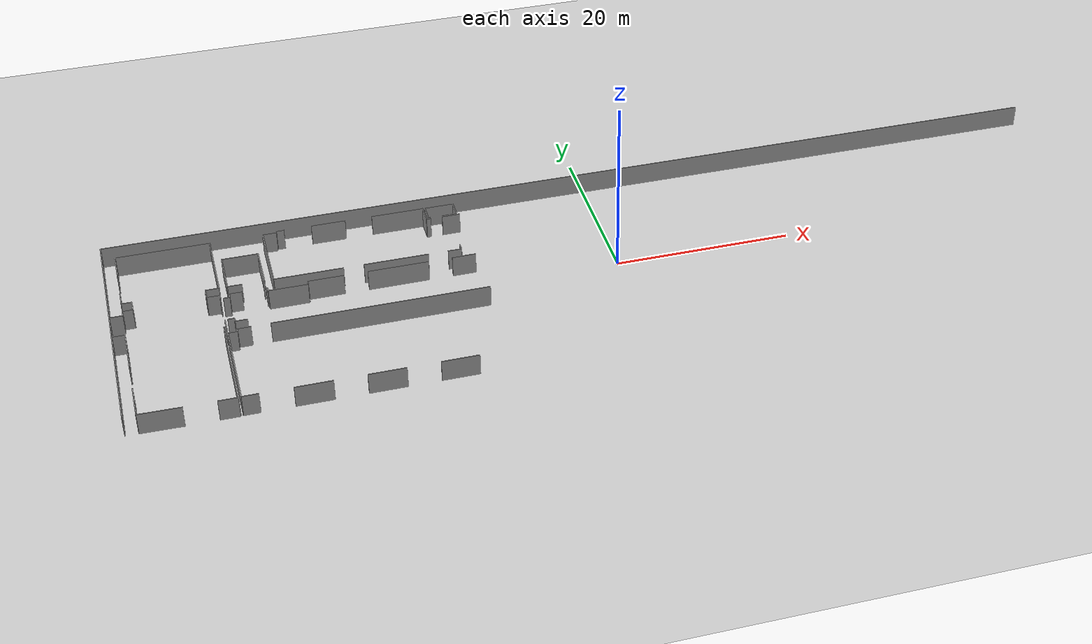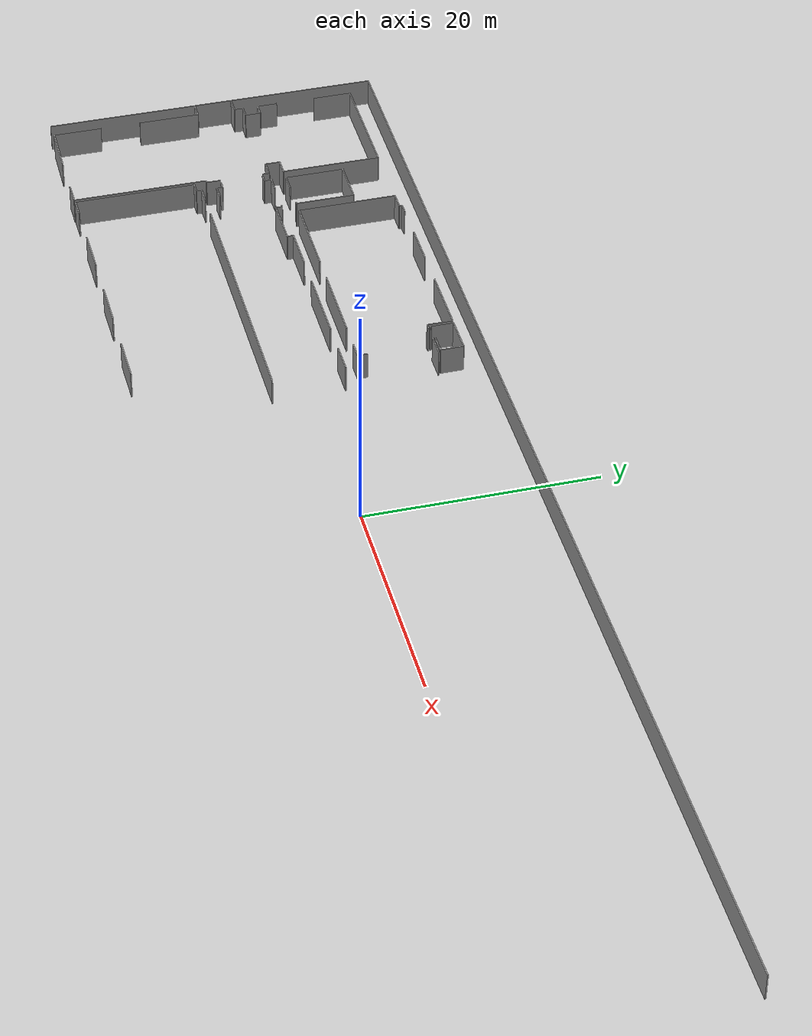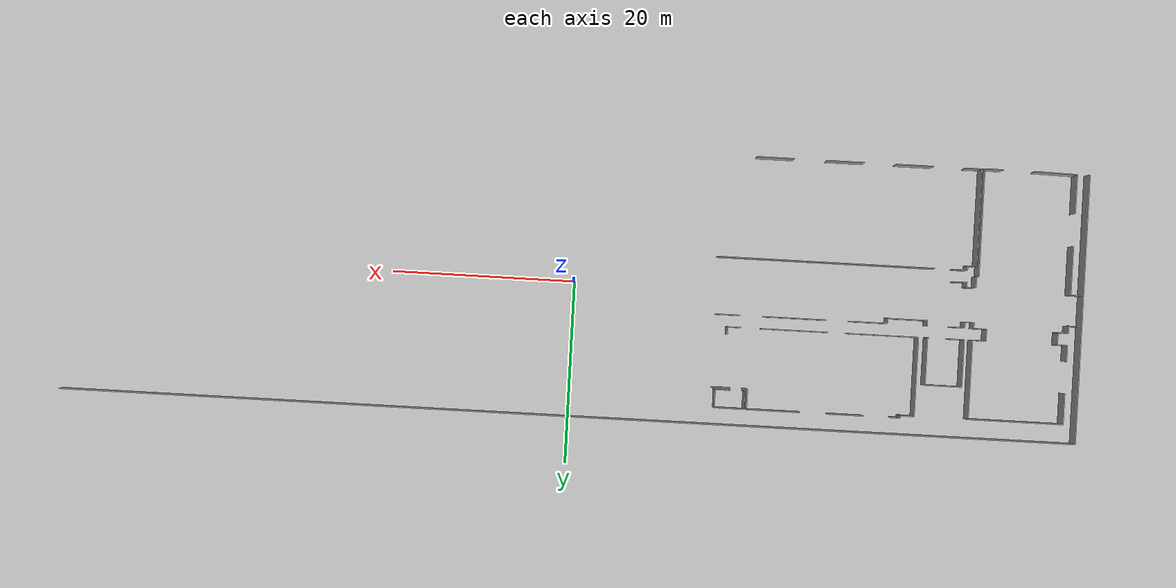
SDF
<sdf version="1.6">
 <world name="default">
  <model name="ground_plane">
   <static>1</static>
   <link name="link">
    <collision name="collision">
     <geometry><plane><normal>0 0 1</normal><size>100 100</size></plane></geometry>
     <surface><friction><ode><mu>100</mu><mu2>50</mu2></ode></friction></surface>
    </collision>
    <visual name="visual">
     <cast_shadows>0</cast_shadows>
     <geometry><plane><normal>0 0 1</normal><size>100 100</size></plane></geometry>
     <material>
      <script><uri>file://media/materials/scripts/gazebo.material</uri><name>Gazebo/Grey</name></script>
     </material>
    </visual>
   </link>
  </model>
  <model name="50056456">
   <static>1</static>
   <link name="Wall_0">
    <collision name="Wall_0_Collision">
     <geometry><box><size>2.08262390621 0.1 2.5</size></box></geometry>
     <pose>1.04131195311 0 1.25 0 0 0</pose>
    </collision>
    <visual name="Wall_0_Visual">
     <pose>1.04131195311 0 1.25 0 0 0</pose>
     <geometry><box><size>2.08262390621 0.1 2.5</size></box></geometry>
     <material>
      <script><uri>file://media/materials/scripts/gazebo.material</uri><name>Gazebo/Grey</name></script>
      <ambient>1 1 1 1</ambient>
     </material>
    </visual>
    <pose>11.503392544 -29.4986150288 0 0 0 3.14159265359</pose>
   </link>
   <link name="Wall_1">
    <collision name="Wall_1_Collision">
     <geometry><box><size>4.572843457 0.1 2.5</size></box></geometry>
     <pose>2.2864217285 0 1.25 0 0 0</pose>
    </collision>
    <visual name="Wall_1_Visual">
     <pose>2.2864217285 0 1.25 0 0 0</pose>
     <geometry><box><size>4.572843457 0.1 2.5</size></box></geometry>
     <material>
      <script><uri>file://media/materials/scripts/gazebo.material</uri><name>Gazebo/Grey</name></script>
      <ambient>1 1 1 1</ambient>
     </material>
    </visual>
    <pose>5.95317357458 -29.4986150288 0 0 0 3.12254874871</pose>
   </link>
   <link name="Wall_2">
    <collision name="Wall_2_Collision">
     <geometry><box><size>4.24775312783 0.1 2.5</size></box></geometry>
     <pose>2.12387656392 0 1.25 0 0 0</pose>
    </collision>
    <visual name="Wall_2_Visual">
     <pose>2.12387656392 0 1.25 0 0 0</pose>
     <geometry><box><size>4.24775312783 0.1 2.5</size></box></geometry>
     <material>
      <script><uri>file://media/materials/scripts/gazebo.material</uri><name>Gazebo/Grey</name></script>
      <ambient>1 1 1 1</ambient>
     </material>
    </visual>
    <pose>1.3811593098 -29.4115354968 0 0 0 1.57079632679</pose>
   </link>
   <link name="Wall_3">
    <collision name="Wall_3_Collision">
     <geometry><box><size>5.36301491703 0.1 2.5</size></box></geometry>
     <pose>2.68150745851 0 1.25 0 0 0</pose>
    </collision>
    <visual name="Wall_3_Visual">
     <pose>2.68150745851 0 1.25 0 0 0</pose>
     <geometry><box><size>5.36301491703 0.1 2.5</size></box></geometry>
     <material>
      <script><uri>file://media/materials/scripts/gazebo.material</uri><name>Gazebo/Grey</name></script>
      <ambient>1 1 1 1</ambient>
     </material>
    </visual>
    <pose>1.3811593098 -21.6009758329 0 0 0 1.57079632679</pose>
   </link>
   <link name="Wall_4">
    <collision name="Wall_4_Collision">
     <geometry><box><size>1.3811593098 0.1 2.5</size></box></geometry>
     <pose>0.690579654901 0 1.25 0 0 0</pose>
    </collision>
    <visual name="Wall_4_Visual">
     <pose>0.690579654901 0 1.25 0 0 0</pose>
     <geometry><box><size>1.3811593098 0.1 2.5</size></box></geometry>
     <material>
      <script><uri>file://media/materials/scripts/gazebo.material</uri><name>Gazebo/Grey</name></script>
      <ambient>1 1 1 1</ambient>
     </material>
    </visual>
    <pose>1.3811593098 -16.2379609159 0 0 0 3.14159265359</pose>
   </link>
   <link name="Wall_5">
    <collision name="Wall_5_Collision">
     <geometry><box><size>1.43469458633 0.1 2.5</size></box></geometry>
     <pose>0.717347293165 0 1.25 0 0 0</pose>
    </collision>
    <visual name="Wall_5_Visual">
     <pose>0.717347293165 0 1.25 0 0 0</pose>
     <geometry><box><size>1.43469458633 0.1 2.5</size></box></geometry>
     <material>
      <script><uri>file://media/materials/scripts/gazebo.material</uri><name>Gazebo/Grey</name></script>
      <ambient>1 1 1 1</ambient>
     </material>
    </visual>
    <pose>0.0 -12.8572759693 0 0 0 0.0</pose>
   </link>
   <link name="Wall_6">
    <collision name="Wall_6_Collision">
     <geometry><box><size>0.782699296079 0.1 2.5</size></box></geometry>
     <pose>0.391349648039 0 1.25 0 0 0</pose>
    </collision>
    <visual name="Wall_6_Visual">
     <pose>0.391349648039 0 1.25 0 0 0</pose>
     <geometry><box><size>0.782699296079 0.1 2.5</size></box></geometry>
     <material>
      <script><uri>file://media/materials/scripts/gazebo.material</uri><name>Gazebo/Grey</name></script>
      <ambient>1 1 1 1</ambient>
     </material>
    </visual>
    <pose>1.43469458633 -12.8572759693 0 0 0 1.57079632679</pose>
   </link>
   <link name="Wall_7">
    <collision name="Wall_7_Collision">
     <geometry><box><size>1.1062827713 0.1 2.5</size></box></geometry>
     <pose>0.553141385649 0 1.25 0 0 0</pose>
    </collision>
    <visual name="Wall_7_Visual">
     <pose>0.553141385649 0 1.25 0 0 0</pose>
     <geometry><box><size>1.1062827713 0.1 2.5</size></box></geometry>
     <material>
      <script><uri>file://media/materials/scripts/gazebo.material</uri><name>Gazebo/Grey</name></script>
      <ambient>1 1 1 1</ambient>
     </material>
    </visual>
    <pose>1.43469458633 -12.0745766732 0 0 0 0.0</pose>
   </link>
   <link name="Wall_8">
    <collision name="Wall_8_Collision">
     <geometry><box><size>1.34769976197 0.1 2.5</size></box></geometry>
     <pose>0.673849880986 0 1.25 0 0 0</pose>
    </collision>
    <visual name="Wall_8_Visual">
     <pose>0.673849880986 0 1.25 0 0 0</pose>
     <geometry><box><size>1.34769976197 0.1 2.5</size></box></geometry>
     <material>
      <script><uri>file://media/materials/scripts/gazebo.material</uri><name>Gazebo/Grey</name></script>
      <ambient>1 1 1 1</ambient>
     </material>
    </visual>
    <pose>2.54097735763 -12.0745766732 0 0 0 1.57079632679</pose>
   </link>
   <link name="Wall_9">
    <collision name="Wall_9_Collision">
     <geometry><box><size>1.09493193735 0.1 2.5</size></box></geometry>
     <pose>0.547465968675 0 1.25 0 0 0</pose>
    </collision>
    <visual name="Wall_9_Visual">
     <pose>0.547465968675 0 1.25 0 0 0</pose>
     <geometry><box><size>1.09493193735 0.1 2.5</size></box></geometry>
     <material>
      <script><uri>file://media/materials/scripts/gazebo.material</uri><name>Gazebo/Grey</name></script>
      <ambient>1 1 1 1</ambient>
     </material>
    </visual>
    <pose>2.54097735763 -10.7268769112 0 0 0 3.14159265359</pose>
   </link>
   <link name="Wall_10">
    <collision name="Wall_10_Collision">
     <geometry><box><size>1.77716788222 0.1 2.5</size></box></geometry>
     <pose>0.888583941111 0 1.25 0 0 0</pose>
    </collision>
    <visual name="Wall_10_Visual">
     <pose>0.888583941111 0 1.25 0 0 0</pose>
     <geometry><box><size>1.77716788222 0.1 2.5</size></box></geometry>
     <material>
      <script><uri>file://media/materials/scripts/gazebo.material</uri><name>Gazebo/Grey</name></script>
      <ambient>1 1 1 1</ambient>
     </material>
    </visual>
    <pose>1.44604542028 -10.7268769112 0 0 0 1.57079632679</pose>
   </link>
   <link name="Wall_11">
    <collision name="Wall_11_Collision">
     <geometry><box><size>3.38068494659 0.1 2.5</size></box></geometry>
     <pose>1.6903424733 0 1.25 0 0 0</pose>
    </collision>
    <visual name="Wall_11_Visual">
     <pose>1.6903424733 0 1.25 0 0 0</pose>
     <geometry><box><size>3.38068494659 0.1 2.5</size></box></geometry>
     <material>
      <script><uri>file://media/materials/scripts/gazebo.material</uri><name>Gazebo/Grey</name></script>
      <ambient>1 1 1 1</ambient>
     </material>
    </visual>
    <pose>1.44604542028 -5.4765232565 0 0 0 1.57079632679</pose>
   </link>
   <link name="Wall_12">
    <collision name="Wall_12_Collision">
     <geometry><box><size>10.3866907237 0.1 2.5</size></box></geometry>
     <pose>5.19334536183 0 1.25 0 0 0</pose>
    </collision>
    <visual name="Wall_12_Visual">
     <pose>5.19334536183 0 1.25 0 0 0</pose>
     <geometry><box><size>10.3866907237 0.1 2.5</size></box></geometry>
     <material>
      <script><uri>file://media/materials/scripts/gazebo.material</uri><name>Gazebo/Grey</name></script>
      <ambient>1 1 1 1</ambient>
     </material>
    </visual>
    <pose>1.44604542028 -2.09583830991 0 0 0 0.0</pose>
   </link>
   <link name="Wall_13">
    <collision name="Wall_13_Collision">
     <geometry><box><size>8.64967429883 0.1 2.5</size></box></geometry>
     <pose>4.32483714942 0 1.25 0 0 0</pose>
    </collision>
    <visual name="Wall_13_Visual">
     <pose>4.32483714942 0 1.25 0 0 0</pose>
     <geometry><box><size>8.64967429883 0.1 2.5</size></box></geometry>
     <material>
      <script><uri>file://media/materials/scripts/gazebo.material</uri><name>Gazebo/Grey</name></script>
      <ambient>1 1 1 1</ambient>
     </material>
    </visual>
    <pose>11.8327361439 -2.09583830991 0 0 0 -1.57079632679</pose>
   </link>
   <link name="Wall_14">
    <collision name="Wall_14_Collision">
     <geometry><box><size>1.48204619959 0.1 2.5</size></box></geometry>
     <pose>0.741023099794 0 1.25 0 0 0</pose>
    </collision>
    <visual name="Wall_14_Visual">
     <pose>0.741023099794 0 1.25 0 0 0</pose>
     <geometry><box><size>1.48204619959 0.1 2.5</size></box></geometry>
     <material>
      <script><uri>file://media/materials/scripts/gazebo.material</uri><name>Gazebo/Grey</name></script>
      <ambient>1 1 1 1</ambient>
     </material>
    </visual>
    <pose>11.8327361439 -10.7455126087 0 0 0 3.14159265359</pose>
   </link>
   <link name="Wall_15">
    <collision name="Wall_15_Collision">
     <geometry><box><size>1.28162774347 0.1 2.5</size></box></geometry>
     <pose>0.640813871736 0 1.25 0 0 0</pose>
    </collision>
    <visual name="Wall_15_Visual">
     <pose>0.640813871736 0 1.25 0 0 0</pose>
     <geometry><box><size>1.28162774347 0.1 2.5</size></box></geometry>
     <material>
      <script><uri>file://media/materials/scripts/gazebo.material</uri><name>Gazebo/Grey</name></script>
      <ambient>1 1 1 1</ambient>
     </material>
    </visual>
    <pose>10.3506899443 -10.7455126087 0 0 0 -1.57079632679</pose>
   </link>
   <link name="Wall_16">
    <collision name="Wall_16_Collision">
     <geometry><box><size>1.41428002677 0.1 2.5</size></box></geometry>
     <pose>0.707140013384 0 1.25 0 0 0</pose>
    </collision>
    <visual name="Wall_16_Visual">
     <pose>0.707140013384 0 1.25 0 0 0</pose>
     <geometry><box><size>1.41428002677 0.1 2.5</size></box></geometry>
     <material>
      <script><uri>file://media/materials/scripts/gazebo.material</uri><name>Gazebo/Grey</name></script>
      <ambient>1 1 1 1</ambient>
     </material>
    </visual>
    <pose>10.3506899443 -12.0271403522 0 0 0 0.0</pose>
   </link>
   <link name="Wall_17">
    <collision name="Wall_17_Collision">
     <geometry><box><size>0.611759125139 0.1 2.5</size></box></geometry>
     <pose>0.305879562569 0 1.25 0 0 0</pose>
    </collision>
    <visual name="Wall_17_Visual">
     <pose>0.305879562569 0 1.25 0 0 0</pose>
     <geometry><box><size>0.611759125139 0.1 2.5</size></box></geometry>
     <material>
      <script><uri>file://media/materials/scripts/gazebo.material</uri><name>Gazebo/Grey</name></script>
      <ambient>1 1 1 1</ambient>
     </material>
    </visual>
    <pose>11.7649699711 -12.0271403522 0 0 0 -1.57079632679</pose>
   </link>
   <link name="Wall_18">
    <collision name="Wall_18_Collision">
     <geometry><box><size>1.22978662126 0.1 2.5</size></box></geometry>
     <pose>0.614893310632 0 1.25 0 0 0</pose>
    </collision>
    <visual name="Wall_18_Visual">
     <pose>0.614893310632 0 1.25 0 0 0</pose>
     <geometry><box><size>1.22978662126 0.1 2.5</size></box></geometry>
     <material>
      <script><uri>file://media/materials/scripts/gazebo.material</uri><name>Gazebo/Grey</name></script>
      <ambient>1 1 1 1</ambient>
     </material>
    </visual>
    <pose>11.7649699711 -16.4629446096 0 0 0 -1.57079632679</pose>
   </link>
   <link name="Wall_19">
    <collision name="Wall_19_Collision">
     <geometry><box><size>0.253614901781 0.1 2.5</size></box></geometry>
     <pose>0.126807450891 0 1.25 0 0 0</pose>
    </collision>
    <visual name="Wall_19_Visual">
     <pose>0.126807450891 0 1.25 0 0 0</pose>
     <geometry><box><size>0.253614901781 0.1 2.5</size></box></geometry>
     <material>
      <script><uri>file://media/materials/scripts/gazebo.material</uri><name>Gazebo/Grey</name></script>
      <ambient>1 1 1 1</ambient>
     </material>
    </visual>
    <pose>11.7649699711 -17.6927312309 0 0 0 3.14159265359</pose>
   </link>
   <link name="Wall_20">
    <collision name="Wall_20_Collision">
     <geometry><box><size>11.8058864831 0.1 2.5</size></box></geometry>
     <pose>5.90294324157 0 1.25 0 0 0</pose>
    </collision>
    <visual name="Wall_20_Visual">
     <pose>5.90294324157 0 1.25 0 0 0</pose>
     <geometry><box><size>11.8058864831 0.1 2.5</size></box></geometry>
     <material>
      <script><uri>file://media/materials/scripts/gazebo.material</uri><name>Gazebo/Grey</name></script>
      <ambient>1 1 1 1</ambient>
     </material>
    </visual>
    <pose>11.5113550693 -17.6927312309 0 0 0 -1.57147078067</pose>
   </link>
   <link name="Wall_35">
    <collision name="Wall_35_Collision">
     <geometry><box><size>1.32584517124 0.1 2.5</size></box></geometry>
     <pose>0.662922585618 0 1.25 0 0 0</pose>
    </collision>
    <visual name="Wall_35_Visual">
     <pose>0.662922585618 0 1.25 0 0 0</pose>
     <geometry><box><size>1.32584517124 0.1 2.5</size></box></geometry>
     <material>
      <script><uri>file://media/materials/scripts/gazebo.material</uri><name>Gazebo/Grey</name></script>
      <ambient>1 1 1 1</ambient>
     </material>
    </visual>
    <pose>14.1073077347 -17.0020245144 0 0 0 3.14159265359</pose>
   </link>
   <link name="Wall_36">
    <collision name="Wall_36_Collision">
     <geometry><box><size>0.525865501089 0.1 2.5</size></box></geometry>
     <pose>0.262932750544 0 1.25 0 0 0</pose>
    </collision>
    <visual name="Wall_36_Visual">
     <pose>0.262932750544 0 1.25 0 0 0</pose>
     <geometry><box><size>0.525865501089 0.1 2.5</size></box></geometry>
     <material>
      <script><uri>file://media/materials/scripts/gazebo.material</uri><name>Gazebo/Grey</name></script>
      <ambient>1 1 1 1</ambient>
     </material>
    </visual>
    <pose>12.7814625634 -17.0020245144 0 0 0 1.57079632679</pose>
   </link>
   <link name="Wall_37">
    <collision name="Wall_37_Collision">
     <geometry><box><size>0.736618298561 0.1 2.5</size></box></geometry>
     <pose>0.36830914928 0 1.25 0 0 0</pose>
    </collision>
    <visual name="Wall_37_Visual">
     <pose>0.36830914928 0 1.25 0 0 0</pose>
     <geometry><box><size>0.736618298561 0.1 2.5</size></box></geometry>
     <material>
      <script><uri>file://media/materials/scripts/gazebo.material</uri><name>Gazebo/Grey</name></script>
      <ambient>1 1 1 1</ambient>
     </material>
    </visual>
    <pose>12.7814625634 -16.4761590133 0 0 0 3.14159265359</pose>
   </link>
   <link name="Wall_38">
    <collision name="Wall_38_Collision">
     <geometry><box><size>0.701379888694 0.1 2.5</size></box></geometry>
     <pose>0.350689944347 0 1.25 0 0 0</pose>
    </collision>
    <visual name="Wall_38_Visual">
     <pose>0.350689944347 0 1.25 0 0 0</pose>
     <geometry><box><size>0.701379888694 0.1 2.5</size></box></geometry>
     <material>
      <script><uri>file://media/materials/scripts/gazebo.material</uri><name>Gazebo/Grey</name></script>
      <ambient>1 1 1 1</ambient>
     </material>
    </visual>
    <pose>12.0448442649 -12.684641644 0 0 0 0.0</pose>
   </link>
   <link name="Wall_39">
    <collision name="Wall_39_Collision">
     <geometry><box><size>0.63496903933 0.1 2.5</size></box></geometry>
     <pose>0.317484519665 0 1.25 0 0 0</pose>
    </collision>
    <visual name="Wall_39_Visual">
     <pose>0.317484519665 0 1.25 0 0 0</pose>
     <geometry><box><size>0.63496903933 0.1 2.5</size></box></geometry>
     <material>
      <script><uri>file://media/materials/scripts/gazebo.material</uri><name>Gazebo/Grey</name></script>
      <ambient>1 1 1 1</ambient>
     </material>
    </visual>
    <pose>12.7462241536 -12.684641644 0 0 0 1.57079632679</pose>
   </link>
   <link name="Wall_40">
    <collision name="Wall_40_Collision">
     <geometry><box><size>1.38226051011 0.1 2.5</size></box></geometry>
     <pose>0.691130255055 0 1.25 0 0 0</pose>
    </collision>
    <visual name="Wall_40_Visual">
     <pose>0.691130255055 0 1.25 0 0 0</pose>
     <geometry><box><size>1.38226051011 0.1 2.5</size></box></geometry>
     <material>
      <script><uri>file://media/materials/scripts/gazebo.material</uri><name>Gazebo/Grey</name></script>
      <ambient>1 1 1 1</ambient>
     </material>
    </visual>
    <pose>12.7462241536 -12.0496726047 0 0 0 0.0</pose>
   </link>
   <link name="Wall_41">
    <collision name="Wall_41_Collision">
     <geometry><box><size>0.166535369707 0.1 2.5</size></box></geometry>
     <pose>0.0832676848534 0 1.25 0 0 0</pose>
    </collision>
    <visual name="Wall_41_Visual">
     <pose>0.0832676848534 0 1.25 0 0 0</pose>
     <geometry><box><size>0.166535369707 0.1 2.5</size></box></geometry>
     <material>
      <script><uri>file://media/materials/scripts/gazebo.material</uri><name>Gazebo/Grey</name></script>
      <ambient>1 1 1 1</ambient>
     </material>
    </visual>
    <pose>16.7173218809 -12.0496726047 0 0 0 0.0</pose>
   </link>
   <link name="Wall_42">
    <collision name="Wall_42_Collision">
     <geometry><box><size>0.564153388732 0.1 2.5</size></box></geometry>
     <pose>0.282076694366 0 1.25 0 0 0</pose>
    </collision>
    <visual name="Wall_42_Visual">
     <pose>0.282076694366 0 1.25 0 0 0</pose>
     <geometry><box><size>0.564153388732 0.1 2.5</size></box></geometry>
     <material>
      <script><uri>file://media/materials/scripts/gazebo.material</uri><name>Gazebo/Grey</name></script>
      <ambient>1 1 1 1</ambient>
     </material>
    </visual>
    <pose>16.8838572506 -12.0496726047 0 0 0 -1.57079632679</pose>
   </link>
   <link name="Wall_43">
    <collision name="Wall_43_Collision">
     <geometry><box><size>4.31704403954 0.1 2.5</size></box></geometry>
     <pose>2.15852201977 0 1.25 0 0 0</pose>
    </collision>
    <visual name="Wall_43_Visual">
     <pose>2.15852201977 0 1.25 0 0 0</pose>
     <geometry><box><size>4.31704403954 0.1 2.5</size></box></geometry>
     <material>
      <script><uri>file://media/materials/scripts/gazebo.material</uri><name>Gazebo/Grey</name></script>
      <ambient>1 1 1 1</ambient>
     </material>
    </visual>
    <pose>16.8838572506 -12.6138259934 0 0 0 0.0</pose>
   </link>
   <link name="Wall_44">
    <collision name="Wall_44_Collision">
     <geometry><box><size>0.5507695696 0.1 2.5</size></box></geometry>
     <pose>0.2753847848 0 1.25 0 0 0</pose>
    </collision>
    <visual name="Wall_44_Visual">
     <pose>0.2753847848 0 1.25 0 0 0</pose>
     <geometry><box><size>0.5507695696 0.1 2.5</size></box></geometry>
     <material>
      <script><uri>file://media/materials/scripts/gazebo.material</uri><name>Gazebo/Grey</name></script>
      <ambient>1 1 1 1</ambient>
     </material>
    </visual>
    <pose>21.2009012901 -12.6138259934 0 0 0 1.57079632679</pose>
   </link>
   <link name="Wall_45">
    <collision name="Wall_45_Collision">
     <geometry><box><size>3.99684887296 0.1 2.5</size></box></geometry>
     <pose>1.99842443648 0 1.25 0 0 0</pose>
    </collision>
    <visual name="Wall_45_Visual">
     <pose>1.99842443648 0 1.25 0 0 0</pose>
     <geometry><box><size>3.99684887296 0.1 2.5</size></box></geometry>
     <material>
      <script><uri>file://media/materials/scripts/gazebo.material</uri><name>Gazebo/Grey</name></script>
      <ambient>1 1 1 1</ambient>
     </material>
    </visual>
    <pose>21.2009012901 -12.0630564238 0 0 0 0.0</pose>
   </link>
   <link name="Wall_46">
    <collision name="Wall_46_Collision">
     <geometry><box><size>6.78051383701 0.1 2.5</size></box></geometry>
     <pose>3.3902569185 0 1.25 0 0 0</pose>
    </collision>
    <visual name="Wall_46_Visual">
     <pose>3.3902569185 0 1.25 0 0 0</pose>
     <geometry><box><size>6.78051383701 0.1 2.5</size></box></geometry>
     <material>
      <script><uri>file://media/materials/scripts/gazebo.material</uri><name>Gazebo/Grey</name></script>
      <ambient>1 1 1 1</ambient>
     </material>
    </visual>
    <pose>27.8443580426 -12.0630564238 0 0 0 0.0</pose>
   </link>
   <link name="Wall_47">
    <collision name="Wall_47_Collision">
     <geometry><box><size>2.63457938384 0.1 2.5</size></box></geometry>
     <pose>1.31728969192 0 1.25 0 0 0</pose>
    </collision>
    <visual name="Wall_47_Visual">
     <pose>1.31728969192 0 1.25 0 0 0</pose>
     <geometry><box><size>2.63457938384 0.1 2.5</size></box></geometry>
     <material>
      <script><uri>file://media/materials/scripts/gazebo.material</uri><name>Gazebo/Grey</name></script>
      <ambient>1 1 1 1</ambient>
     </material>
    </visual>
    <pose>37.2692773585 -12.0630564238 0 0 0 0.0</pose>
   </link>
   <link name="Wall_77">
    <collision name="Wall_77_Collision">
     <geometry><box><size>0.161114075881 0.1 2.5</size></box></geometry>
     <pose>0.0805570379406 0 1.25 0 0 0</pose>
    </collision>
    <visual name="Wall_77_Visual">
     <pose>0.0805570379406 0 1.25 0 0 0</pose>
     <geometry><box><size>0.161114075881 0.1 2.5</size></box></geometry>
     <material>
      <script><uri>file://media/materials/scripts/gazebo.material</uri><name>Gazebo/Grey</name></script>
      <ambient>1 1 1 1</ambient>
     </material>
    </visual>
    <pose>16.7398541333 -10.7300958044 0 0 0 3.14159265359</pose>
   </link>
   <link name="Wall_78">
    <collision name="Wall_78_Collision">
     <geometry><box><size>1.57895182672 0.1 2.5</size></box></geometry>
     <pose>0.789475913361 0 1.25 0 0 0</pose>
    </collision>
    <visual name="Wall_78_Visual">
     <pose>0.789475913361 0 1.25 0 0 0</pose>
     <geometry><box><size>1.57895182672 0.1 2.5</size></box></geometry>
     <material>
      <script><uri>file://media/materials/scripts/gazebo.material</uri><name>Gazebo/Grey</name></script>
      <ambient>1 1 1 1</ambient>
     </material>
    </visual>
    <pose>14.3124698229 -10.7300958044 0 0 0 3.14159265359</pose>
   </link>
   <link name="Wall_79">
    <collision name="Wall_79_Collision">
     <geometry><box><size>5.15683633622 0.1 2.5</size></box></geometry>
     <pose>2.57841816811 0 1.25 0 0 0</pose>
    </collision>
    <visual name="Wall_79_Visual">
     <pose>2.57841816811 0 1.25 0 0 0</pose>
     <geometry><box><size>5.15683633622 0.1 2.5</size></box></geometry>
     <material>
      <script><uri>file://media/materials/scripts/gazebo.material</uri><name>Gazebo/Grey</name></script>
      <ambient>1 1 1 1</ambient>
     </material>
    </visual>
    <pose>12.7335179962 -10.7300958044 0 0 0 1.57079632679</pose>
   </link>
   <link name="Wall_80">
    <collision name="Wall_80_Collision">
     <geometry><box><size>4.0102326921 0.1 2.5</size></box></geometry>
     <pose>2.00511634605 0 1.25 0 0 0</pose>
    </collision>
    <visual name="Wall_80_Visual">
     <pose>2.00511634605 0 1.25 0 0 0</pose>
     <geometry><box><size>4.0102326921 0.1 2.5</size></box></geometry>
     <material>
      <script><uri>file://media/materials/scripts/gazebo.material</uri><name>Gazebo/Grey</name></script>
      <ambient>1 1 1 1</ambient>
     </material>
    </visual>
    <pose>12.7335179962 -5.5732594682 0 0 0 0.0</pose>
   </link>
   <link name="Wall_81">
    <collision name="Wall_81_Collision">
     <geometry><box><size>5.15683780836 0.1 2.5</size></box></geometry>
     <pose>2.57841890418 0 1.25 0 0 0</pose>
    </collision>
    <visual name="Wall_81_Visual">
     <pose>2.57841890418 0 1.25 0 0 0</pose>
     <geometry><box><size>5.15683780836 0.1 2.5</size></box></geometry>
     <material>
      <script><uri>file://media/materials/scripts/gazebo.material</uri><name>Gazebo/Grey</name></script>
      <ambient>1 1 1 1</ambient>
     </material>
    </visual>
    <pose>16.7437506883 -5.5732594682 0 0 0 -1.57155193623</pose>
   </link>
   <link name="Wall_83">
    <collision name="Wall_83_Collision">
     <geometry><box><size>4.08646963652 0.1 2.5</size></box></geometry>
     <pose>2.04323481826 0 1.25 0 0 0</pose>
    </collision>
    <visual name="Wall_83_Visual">
     <pose>2.04323481826 0 1.25 0 0 0</pose>
     <geometry><box><size>4.08646963652 0.1 2.5</size></box></geometry>
     <material>
      <script><uri>file://media/materials/scripts/gazebo.material</uri><name>Gazebo/Grey</name></script>
      <ambient>1 1 1 1</ambient>
     </material>
    </visual>
    <pose>36.355450518 -29.4547364319 0 0 0 3.14159265359</pose>
   </link>
   <link name="Wall_84">
    <collision name="Wall_84_Collision">
     <geometry><box><size>4.08646963652 0.1 2.5</size></box></geometry>
     <pose>2.04323481826 0 1.25 0 0 0</pose>
    </collision>
    <visual name="Wall_84_Visual">
     <pose>2.04323481826 0 1.25 0 0 0</pose>
     <geometry><box><size>4.08646963652 0.1 2.5</size></box></geometry>
     <material>
      <script><uri>file://media/materials/scripts/gazebo.material</uri><name>Gazebo/Grey</name></script>
      <ambient>1 1 1 1</ambient>
     </material>
    </visual>
    <pose>28.7205746571 -29.4547364319 0 0 0 3.14159265359</pose>
   </link>
   <link name="Wall_85">
    <collision name="Wall_85_Collision">
     <geometry><box><size>4.06088790628 0.1 2.5</size></box></geometry>
     <pose>2.03044395314 0 1.25 0 0 0</pose>
    </collision>
    <visual name="Wall_85_Visual">
     <pose>2.03044395314 0 1.25 0 0 0</pose>
     <geometry><box><size>4.06088790628 0.1 2.5</size></box></geometry>
     <material>
      <script><uri>file://media/materials/scripts/gazebo.material</uri><name>Gazebo/Grey</name></script>
      <ambient>1 1 1 1</ambient>
     </material>
    </visual>
    <pose>21.1497378296 -29.4547364319 0 0 0 3.14159265359</pose>
   </link>
   <link name="Wall_86">
    <collision name="Wall_86_Collision">
     <geometry><box><size>1.78055619086 0.1 2.5</size></box></geometry>
     <pose>0.890278095432 0 1.25 0 0 0</pose>
    </collision>
    <visual name="Wall_86_Visual">
     <pose>0.890278095432 0 1.25 0 0 0</pose>
     <geometry><box><size>1.78055619086 0.1 2.5</size></box></geometry>
     <material>
      <script><uri>file://media/materials/scripts/gazebo.material</uri><name>Gazebo/Grey</name></script>
      <ambient>1 1 1 1</ambient>
     </material>
    </visual>
    <pose>13.5660254293 -29.4547364319 0 0 0 3.14159265359</pose>
   </link>
   <link name="Wall_87">
    <collision name="Wall_87_Collision">
     <geometry><box><size>10.6333595927 0.1 2.5</size></box></geometry>
     <pose>5.31667979636 0 1.25 0 0 0</pose>
    </collision>
    <visual name="Wall_87_Visual">
     <pose>5.31667979636 0 1.25 0 0 0</pose>
     <geometry><box><size>10.6333595927 0.1 2.5</size></box></geometry>
     <material>
      <script><uri>file://media/materials/scripts/gazebo.material</uri><name>Gazebo/Grey</name></script>
      <ambient>1 1 1 1</ambient>
     </material>
    </visual>
    <pose>11.7854692384 -29.4547364319 0 0 0 1.57079632679</pose>
   </link>
   <link name="Wall_88">
    <collision name="Wall_88_Collision">
     <geometry><box><size>1.00615825096 0.1 2.5</size></box></geometry>
     <pose>0.503079125478 0 1.25 0 0 0</pose>
    </collision>
    <visual name="Wall_88_Visual">
     <pose>0.503079125478 0 1.25 0 0 0</pose>
     <geometry><box><size>1.00615825096 0.1 2.5</size></box></geometry>
     <material>
      <script><uri>file://media/materials/scripts/gazebo.material</uri><name>Gazebo/Grey</name></script>
      <ambient>1 1 1 1</ambient>
     </material>
    </visual>
    <pose>11.7854692384 -18.8213768392 0 0 0 0.0</pose>
   </link>
   <link name="Wall_89">
    <collision name="Wall_89_Collision">
     <geometry><box><size>0.471652562832 0.1 2.5</size></box></geometry>
     <pose>0.235826281416 0 1.25 0 0 0</pose>
    </collision>
    <visual name="Wall_89_Visual">
     <pose>0.235826281416 0 1.25 0 0 0</pose>
     <geometry><box><size>0.471652562832 0.1 2.5</size></box></geometry>
     <material>
      <script><uri>file://media/materials/scripts/gazebo.material</uri><name>Gazebo/Grey</name></script>
      <ambient>1 1 1 1</ambient>
     </material>
    </visual>
    <pose>12.7916274893 -18.8213768392 0 0 0 1.57079632679</pose>
   </link>
   <link name="Wall_90">
    <collision name="Wall_90_Collision">
     <geometry><box><size>1.46561290268 0.1 2.5</size></box></geometry>
     <pose>0.73280645134 0 1.25 0 0 0</pose>
    </collision>
    <visual name="Wall_90_Visual">
     <pose>0.73280645134 0 1.25 0 0 0</pose>
     <geometry><box><size>1.46561290268 0.1 2.5</size></box></geometry>
     <material>
      <script><uri>file://media/materials/scripts/gazebo.material</uri><name>Gazebo/Grey</name></script>
      <ambient>1 1 1 1</ambient>
     </material>
    </visual>
    <pose>12.7916274893 -18.3497242764 0 0 0 0.0</pose>
   </link>
   <link name="Wall_91">
    <collision name="Wall_91_Collision">
     <geometry><box><size>23.7711875175 0.1 2.5</size></box></geometry>
     <pose>11.8855937587 0 1.25 0 0 0</pose>
    </collision>
    <visual name="Wall_91_Visual">
     <pose>11.8855937587 0 1.25 0 0 0</pose>
     <geometry><box><size>23.7711875175 0.1 2.5</size></box></geometry>
     <material>
      <script><uri>file://media/materials/scripts/gazebo.material</uri><name>Gazebo/Grey</name></script>
      <ambient>1 1 1 1</ambient>
     </material>
    </visual>
    <pose>16.3376618976 -18.3497242764 0 0 0 0.0</pose>
   </link>
   <link name="Wall_105">
    <collision name="Wall_105_Collision">
     <geometry><box><size>0.859105655934 0.1 2.5</size></box></geometry>
     <pose>0.429552827967 0 1.25 0 0 0</pose>
    </collision>
    <visual name="Wall_105_Visual">
     <pose>0.429552827967 0 1.25 0 0 0</pose>
     <geometry><box><size>0.859105655934 0.1 2.5</size></box></geometry>
     <material>
      <script><uri>file://media/materials/scripts/gazebo.material</uri><name>Gazebo/Grey</name></script>
      <ambient>1 1 1 1</ambient>
     </material>
    </visual>
    <pose>38.6079981025 -9.86777125528 0 0 0 -1.57079632679</pose>
   </link>
   <link name="Wall_106">
    <collision name="Wall_106_Collision">
     <geometry><box><size>1.50762792983 0.1 2.5</size></box></geometry>
     <pose>0.753813964914 0 1.25 0 0 0</pose>
    </collision>
    <visual name="Wall_106_Visual">
     <pose>0.753813964914 0 1.25 0 0 0</pose>
     <geometry><box><size>1.50762792983 0.1 2.5</size></box></geometry>
     <material>
      <script><uri>file://media/materials/scripts/gazebo.material</uri><name>Gazebo/Grey</name></script>
      <ambient>1 1 1 1</ambient>
     </material>
    </visual>
    <pose>38.6079981025 -10.7268769112 0 0 0 3.14159265359</pose>
   </link>
   <link name="Wall_107">
    <collision name="Wall_107_Collision">
     <geometry><box><size>7.21845272886 0.1 2.5</size></box></geometry>
     <pose>3.60922636443 0 1.25 0 0 0</pose>
    </collision>
    <visual name="Wall_107_Visual">
     <pose>3.60922636443 0 1.25 0 0 0</pose>
     <geometry><box><size>7.21845272886 0.1 2.5</size></box></geometry>
     <material>
      <script><uri>file://media/materials/scripts/gazebo.material</uri><name>Gazebo/Grey</name></script>
      <ambient>1 1 1 1</ambient>
     </material>
    </visual>
    <pose>34.8766232116 -10.7268769112 0 0 0 3.14159265359</pose>
   </link>
   <link name="Wall_108">
    <collision name="Wall_108_Collision">
     <geometry><box><size>7.67045310157 0.1 2.5</size></box></geometry>
     <pose>3.83522655079 0 1.25 0 0 0</pose>
    </collision>
    <visual name="Wall_108_Visual">
     <pose>3.83522655079 0 1.25 0 0 0</pose>
     <geometry><box><size>7.67045310157 0.1 2.5</size></box></geometry>
     <material>
      <script><uri>file://media/materials/scripts/gazebo.material</uri><name>Gazebo/Grey</name></script>
      <ambient>1 1 1 1</ambient>
     </material>
    </visual>
    <pose>25.4118912692 -10.7268769112 0 0 0 3.14159265359</pose>
   </link>
   <link name="Wall_109">
    <collision name="Wall_109_Collision">
     <geometry><box><size>8.64188118896 0.1 2.5</size></box></geometry>
     <pose>4.32094059448 0 1.25 0 0 0</pose>
    </collision>
    <visual name="Wall_109_Visual">
     <pose>4.32094059448 0 1.25 0 0 0</pose>
     <geometry><box><size>8.64188118896 0.1 2.5</size></box></geometry>
     <material>
      <script><uri>file://media/materials/scripts/gazebo.material</uri><name>Gazebo/Grey</name></script>
      <ambient>1 1 1 1</ambient>
     </material>
    </visual>
    <pose>17.7414381676 -10.7268769112 0 0 0 1.57079632679</pose>
   </link>
   <link name="Wall_110">
    <collision name="Wall_110_Collision">
     <geometry><box><size>1.51914817921 0.1 2.5</size></box></geometry>
     <pose>0.759574089604 0 1.25 0 0 0</pose>
    </collision>
    <visual name="Wall_110_Visual">
     <pose>0.759574089604 0 1.25 0 0 0</pose>
     <geometry><box><size>1.51914817921 0.1 2.5</size></box></geometry>
     <material>
      <script><uri>file://media/materials/scripts/gazebo.material</uri><name>Gazebo/Grey</name></script>
      <ambient>1 1 1 1</ambient>
     </material>
    </visual>
    <pose>17.7414381676 -2.08499572226 0 0 0 0.0</pose>
   </link>
   <link name="Wall_111">
    <collision name="Wall_111_Collision">
     <geometry><box><size>0.244297053019 0.1 2.5</size></box></geometry>
     <pose>0.122148526509 0 1.25 0 0 0</pose>
    </collision>
    <visual name="Wall_111_Visual">
     <pose>0.122148526509 0 1.25 0 0 0</pose>
     <geometry><box><size>0.244297053019 0.1 2.5</size></box></geometry>
     <material>
      <script><uri>file://media/materials/scripts/gazebo.material</uri><name>Gazebo/Grey</name></script>
      <ambient>1 1 1 1</ambient>
     </material>
    </visual>
    <pose>19.2605863468 -2.08499572226 0 0 0 1.57079632679</pose>
   </link>
   <link name="Wall_112">
    <collision name="Wall_112_Collision">
     <geometry><box><size>0.901120683083 0.1 2.5</size></box></geometry>
     <pose>0.450560341542 0 1.25 0 0 0</pose>
    </collision>
    <visual name="Wall_112_Visual">
     <pose>0.450560341542 0 1.25 0 0 0</pose>
     <geometry><box><size>0.901120683083 0.1 2.5</size></box></geometry>
     <material>
      <script><uri>file://media/materials/scripts/gazebo.material</uri><name>Gazebo/Grey</name></script>
      <ambient>1 1 1 1</ambient>
     </material>
    </visual>
    <pose>19.2605863468 -1.84069866924 0 0 0 0.0</pose>
   </link>
   <link name="Wall_113">
    <collision name="Wall_113_Collision">
     <geometry><box><size>3.86622957485 0.1 2.5</size></box></geometry>
     <pose>1.93311478743 0 1.25 0 0 0</pose>
    </collision>
    <visual name="Wall_113_Visual">
     <pose>1.93311478743 0 1.25 0 0 0</pose>
     <geometry><box><size>3.86622957485 0.1 2.5</size></box></geometry>
     <material>
      <script><uri>file://media/materials/scripts/gazebo.material</uri><name>Gazebo/Grey</name></script>
      <ambient>1 1 1 1</ambient>
     </material>
    </visual>
    <pose>23.2445596469 -1.84069866924 0 0 0 0.0</pose>
   </link>
   <link name="Wall_114">
    <collision name="Wall_114_Collision">
     <geometry><box><size>5.90158657552 0.1 2.5</size></box></geometry>
     <pose>2.95079328776 0 1.25 0 0 0</pose>
    </collision>
    <visual name="Wall_114_Visual">
     <pose>2.95079328776 0 1.25 0 0 0</pose>
     <geometry><box><size>5.90158657552 0.1 2.5</size></box></geometry>
     <material>
      <script><uri>file://media/materials/scripts/gazebo.material</uri><name>Gazebo/Grey</name></script>
      <ambient>1 1 1 1</ambient>
     </material>
    </visual>
    <pose>30.1597587524 -1.84069866924 0 0 0 0.0</pose>
   </link>
   <link name="Wall_115">
    <collision name="Wall_115_Collision">
     <geometry><box><size>2.21697034383 0.1 2.5</size></box></geometry>
     <pose>1.10848517191 0 1.25 0 0 0</pose>
    </collision>
    <visual name="Wall_115_Visual">
     <pose>1.10848517191 0 1.25 0 0 0</pose>
     <geometry><box><size>2.21697034383 0.1 2.5</size></box></geometry>
     <material>
      <script><uri>file://media/materials/scripts/gazebo.material</uri><name>Gazebo/Grey</name></script>
      <ambient>1 1 1 1</ambient>
     </material>
    </visual>
    <pose>36.0613453279 -1.84069866924 0 0 0 -1.57079632679</pose>
   </link>
   <link name="Wall_116">
    <collision name="Wall_116_Collision">
     <geometry><box><size>0.468772500487 0.1 2.5</size></box></geometry>
     <pose>0.234386250244 0 1.25 0 0 0</pose>
    </collision>
    <visual name="Wall_116_Visual">
     <pose>0.234386250244 0 1.25 0 0 0</pose>
     <geometry><box><size>0.468772500487 0.1 2.5</size></box></geometry>
     <material>
      <script><uri>file://media/materials/scripts/gazebo.material</uri><name>Gazebo/Grey</name></script>
      <ambient>1 1 1 1</ambient>
     </material>
    </visual>
    <pose>36.0613453279 -4.05766901307 0 0 0 0.0</pose>
   </link>
   <link name="Wall_117">
    <collision name="Wall_117_Collision">
     <geometry><box><size>2.02146493524 0.1 2.5</size></box></geometry>
     <pose>1.01073246762 0 1.25 0 0 0</pose>
    </collision>
    <visual name="Wall_117_Visual">
     <pose>1.01073246762 0 1.25 0 0 0</pose>
     <geometry><box><size>2.02146493524 0.1 2.5</size></box></geometry>
     <material>
      <script><uri>file://media/materials/scripts/gazebo.material</uri><name>Gazebo/Grey</name></script>
      <ambient>1 1 1 1</ambient>
     </material>
    </visual>
    <pose>37.8632478632 -4.05766901307 0 0 0 0.0</pose>
   </link>
   <link name="Wall_127">
    <collision name="Wall_127_Collision">
     <geometry><box><size>1.69991444521 0.1 2.5</size></box></geometry>
     <pose>0.849957222603 0 1.25 0 0 0</pose>
    </collision>
    <visual name="Wall_127_Visual">
     <pose>0.849957222603 0 1.25 0 0 0</pose>
     <geometry><box><size>1.69991444521 0.1 2.5</size></box></geometry>
     <material>
      <script><uri>file://media/materials/scripts/gazebo.material</uri><name>Gazebo/Grey</name></script>
      <ambient>1 1 1 1</ambient>
     </material>
    </visual>
    <pose>39.5919629319 -3.85098218597 0 0 0 3.14159265359</pose>
   </link>
   <link name="Wall_128">
    <collision name="Wall_128_Collision">
     <geometry><box><size>0.190422945626 0.1 2.5</size></box></geometry>
     <pose>0.0952114728131 0 1.25 0 0 0</pose>
    </collision>
    <visual name="Wall_128_Visual">
     <pose>0.0952114728131 0 1.25 0 0 0</pose>
     <geometry><box><size>0.190422945626 0.1 2.5</size></box></geometry>
     <material>
      <script><uri>file://media/materials/scripts/gazebo.material</uri><name>Gazebo/Grey</name></script>
      <ambient>1 1 1 1</ambient>
     </material>
    </visual>
    <pose>36.5080938223 -3.85098218597 0 0 0 3.14159265359</pose>
   </link>
   <link name="Wall_129">
    <collision name="Wall_129_Collision">
     <geometry><box><size>1.99791619019 0.1 2.5</size></box></geometry>
     <pose>0.998958095093 0 1.25 0 0 0</pose>
    </collision>
    <visual name="Wall_129_Visual">
     <pose>0.998958095093 0 1.25 0 0 0</pose>
     <geometry><box><size>1.99791619019 0.1 2.5</size></box></geometry>
     <material>
      <script><uri>file://media/materials/scripts/gazebo.material</uri><name>Gazebo/Grey</name></script>
      <ambient>1 1 1 1</ambient>
     </material>
    </visual>
    <pose>36.3176708766 -3.85098218597 0 0 0 1.57079632679</pose>
   </link>
   <link name="Wall_130">
    <collision name="Wall_130_Collision">
     <geometry><box><size>3.25938349724 0.1 2.5</size></box></geometry>
     <pose>1.62969174862 0 1.25 0 0 0</pose>
    </collision>
    <visual name="Wall_130_Visual">
     <pose>1.62969174862 0 1.25 0 0 0</pose>
     <geometry><box><size>3.25938349724 0.1 2.5</size></box></geometry>
     <material>
      <script><uri>file://media/materials/scripts/gazebo.material</uri><name>Gazebo/Grey</name></script>
      <ambient>1 1 1 1</ambient>
     </material>
    </visual>
    <pose>36.3176708766 -1.85306599578 0 0 0 0.0</pose>
   </link>
   <link name="Wall_131">
    <collision name="Wall_131_Collision">
     <geometry><box><size>1.99797181364 0.1 2.5</size></box></geometry>
     <pose>0.998985906821 0 1.25 0 0 0</pose>
    </collision>
    <visual name="Wall_131_Visual">
     <pose>0.998985906821 0 1.25 0 0 0</pose>
     <geometry><box><size>1.99797181364 0.1 2.5</size></box></geometry>
     <material>
      <script><uri>file://media/materials/scripts/gazebo.material</uri><name>Gazebo/Grey</name></script>
      <ambient>1 1 1 1</ambient>
     </material>
    </visual>
    <pose>39.5770543739 -1.85306599578 0 0 0 -1.56333441153</pose>
   </link>
   <link name="Wall_267">
    <collision name="Wall_267_Collision">
     <geometry><box><size>29.4986150288 0.1 2.5</size></box></geometry>
     <pose>14.7493075144 0 1.25 0 0 0</pose>
    </collision>
    <visual name="Wall_267_Visual">
     <pose>14.7493075144 0 1.25 0 0 0</pose>
     <geometry><box><size>29.4986150288 0.1 2.5</size></box></geometry>
     <material>
      <script><uri>file://media/materials/scripts/gazebo.material</uri><name>Gazebo/Grey</name></script>
      <ambient>1 1 1 1</ambient>
     </material>
    </visual>
    <pose>0.0 -29.4986150288 0 0 0 1.57079632679</pose>
   </link>
   <link name="Wall_268">
    <collision name="Wall_268_Collision">
     <geometry><box><size>111.184552701 0.1 2.5</size></box></geometry>
     <pose>55.5922763505 0 1.25 0 0 0</pose>
    </collision>
    <visual name="Wall_268_Visual">
     <pose>55.5922763505 0 1.25 0 0 0</pose>
     <geometry><box><size>111.184552701 0.1 2.5</size></box></geometry>
     <material>
      <script><uri>file://media/materials/scripts/gazebo.material</uri><name>Gazebo/Grey</name></script>
      <ambient>1 1 1 1</ambient>
     </material>
    </visual>
   </link>
   <pose>-55.55 14.7486150288 0 0 0 0</pose>
  </model>
 </world>
</sdf>
